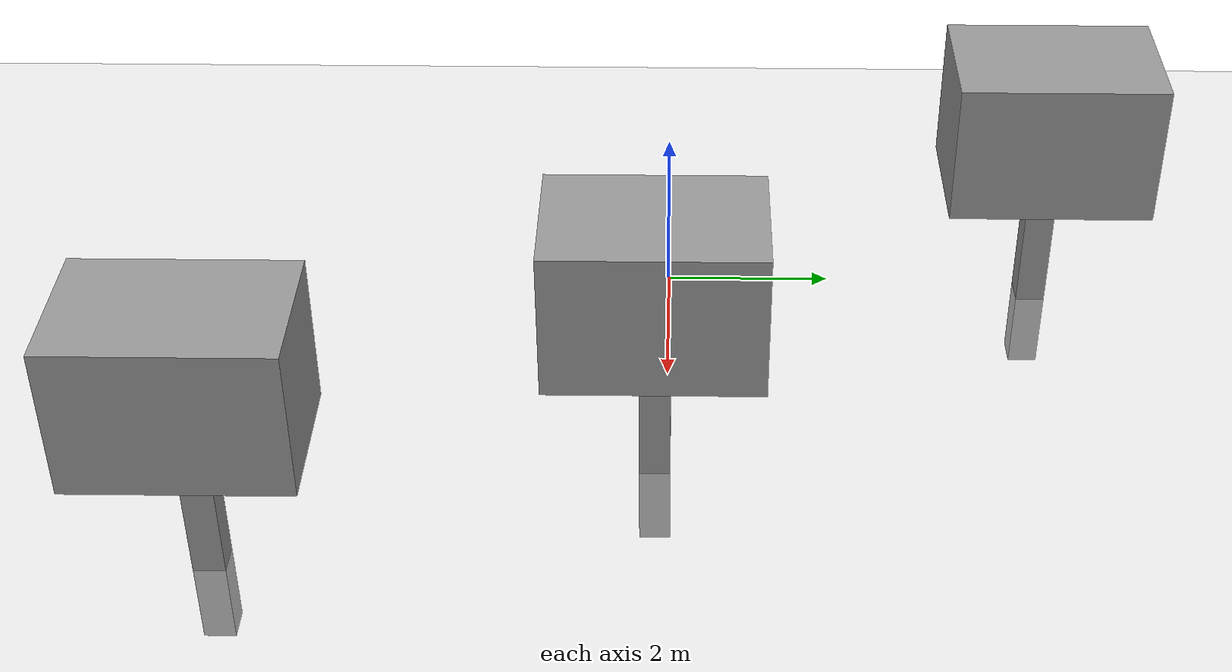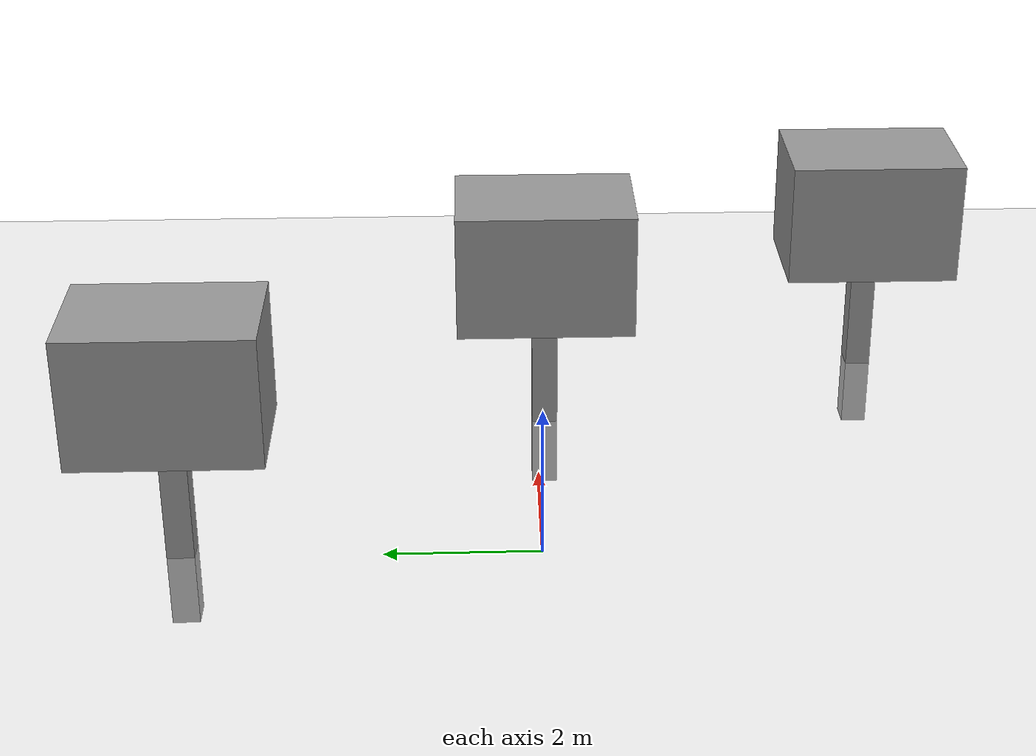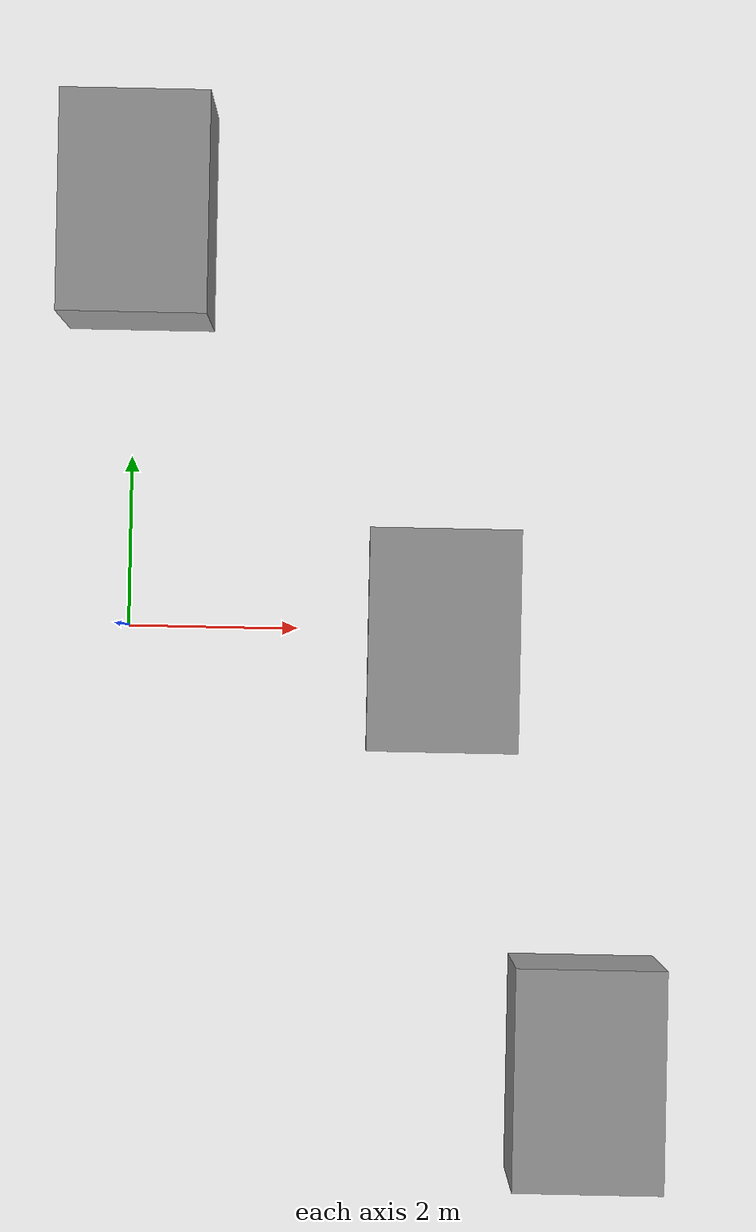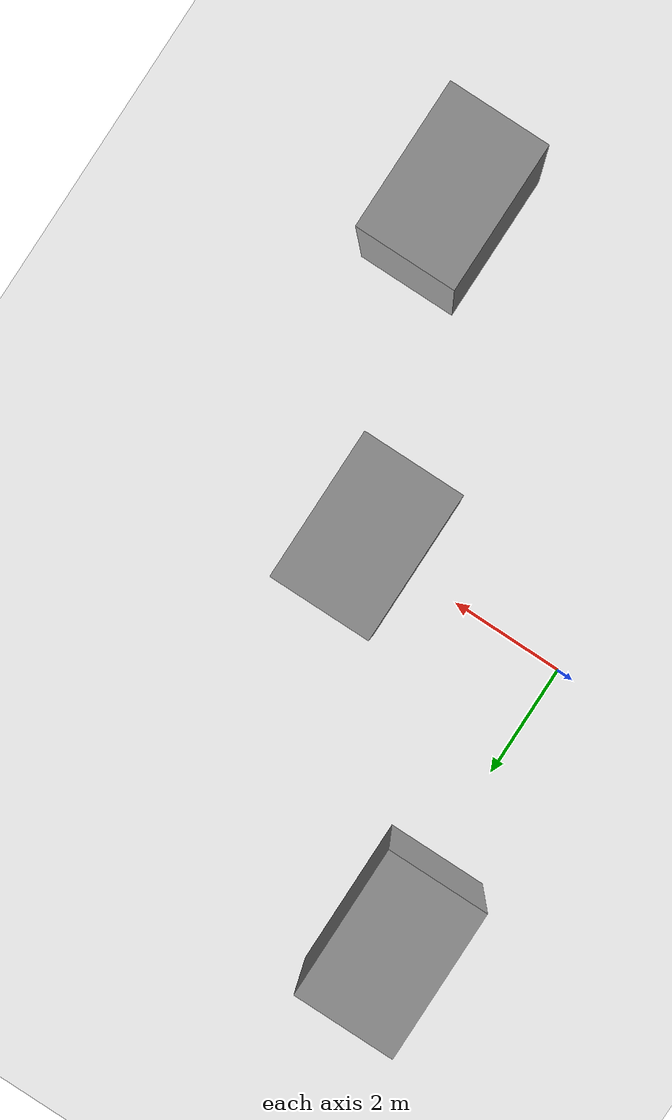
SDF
<sdf version="1.7">
 <world name="default">
  <light name="sun" type="directional">
   <pose>0 0 10 0 -0 0</pose>
   <diffuse>0.8 0.8 0.8 1</diffuse>
   <specular>0.2 0.2 0.2 1</specular>
   <attenuation>
    <range>1000</range>
    <constant>0.9</constant>
    <linear>0.01</linear>
    <quadratic>0.001</quadratic>
   </attenuation>
   <direction>-0.5 0.1 -0.9</direction>
   <spot><inner_angle>0</inner_angle><outer_angle>0</outer_angle><falloff>0</falloff></spot>
  </light>
  <model name="ground_plane">
   <static>1</static>
   <link name="link">
    <collision name="collision">
     <geometry><plane><normal>0 0 1</normal><size>100 100</size></plane></geometry>
     <surface>
      <contact><collide_bitmask>65535</collide_bitmask></contact>
      <friction><ode><mu>100</mu><mu2>50</mu2></ode></friction>
     </surface>
    </collision>
    <visual name="visual">
     <cast_shadows>0</cast_shadows>
     <geometry><plane><normal>0 0 1</normal><size>100 100</size></plane></geometry>
     <material>
      <script><uri>file://media/materials/scripts/gazebo.material</uri><name>Gazebo/Grey</name></script>
     </material>
    </visual>
   </link>
  </model>
  <gravity>0 0 -9.8</gravity>
  <magnetic_field>6e-06 2.3e-05 -4.2e-05</magnetic_field>
  <atmosphere type="adiabatic"/>
  <physics type="ode">
   <max_step_size>0.001</max_step_size>
   <real_time_factor>1</real_time_factor>
   <real_time_update_rate>1000</real_time_update_rate>
  </physics>
  <scene><ambient>0.4 0.4 0.4 1</ambient><background>0.7 0.7 0.7 1</background><shadows>1</shadows></scene>
  <spherical_coordinates>
   <surface_model>EARTH_WGS84</surface_model>
   <latitude_deg>0</latitude_deg>
   <longitude_deg>0</longitude_deg>
   <elevation>0</elevation>
   <heading_deg>0</heading_deg>
  </spherical_coordinates>
  <model name="unit_box">
   <link name="link">
    <inertial>
     <mass>0.369447</mass>
     <inertia>
      <ixx>0.271173</ixx>
      <ixy>0</ixy>
      <ixz>0</ixz>
      <iyy>0.271397</iyy>
      <iyz>0</iyz>
      <izz>0.00772365</izz>
     </inertia>
    </inertial>
    <pose>-0.004461 0.004406 -0 0 -0 0</pose>
    <visual name="visual">
     <geometry><box><size>0.35927 0.348994 2.94723</size></box></geometry>
     <material>
      <script><name>Gazebo/Grey</name><uri>file://media/materials/scripts/gazebo.material</uri></script>
      <shader type="pixel"/>
     </material>
    </visual>
    <collision name="collision">
     <geometry><box><size>0.35927 0.348994 2.94723</size></box></geometry>
     <surface>
      <friction>
       <ode><mu>1</mu><mu2>1</mu2><fdir1>0 0 0</fdir1><slip1>0</slip1><slip2>0</slip2></ode>
       <torsional>
        <coefficient>1</coefficient>
        <patch_radius>0</patch_radius>
        <surface_radius>0</surface_radius>
        <use_patch_radius>1</use_patch_radius>
        <ode><slip>0</slip></ode>
       </torsional>
      </friction>
      <bounce><restitution_coefficient>0</restitution_coefficient><threshold>1e+06</threshold></bounce>
      <contact>
       <collide_without_contact>0</collide_without_contact>
       <collide_without_contact_bitmask>1</collide_without_contact_bitmask>
       <collide_bitmask>1</collide_bitmask>
       <ode>
        <soft_cfm>0</soft_cfm>
        <soft_erp>0.2</soft_erp>
        <kp>1e+13</kp>
        <kd>1</kd>
        <max_vel>0.01</max_vel>
        <min_depth>0</min_depth>
       </ode>
       <bullet>
        <split_impulse>1</split_impulse>
        <split_impulse_penetration_threshold>-0.01</split_impulse_penetration_threshold>
        <soft_cfm>0</soft_cfm>
        <soft_erp>0.2</soft_erp>
        <kp>1e+13</kp>
        <kd>1</kd>
       </bullet>
      </contact>
     </surface>
    </collision>
   </link>
   <link name="link_0">
    <inertial>
     <mass>6.72494</mass>
     <inertia><ixx>4.88018</ixx><ixy>0</ixy><ixz>0</ixz><iyy>3.13848</iyy><iyz>0</iyz><izz>4.73661</izz></inertia>
    </inertial>
    <pose>0.001744 -0.001232 1.95604 -1e-05 0 0</pose>
    <visual name="visual">
     <geometry><box><size>1.63464 2.40415 1.71121</size></box></geometry>
     <material>
      <lighting>1</lighting>
      <script><uri>file://media/materials/scripts/gazebo.material</uri><name>Gazebo/Grey</name></script>
      <shader type="pixel"/>
     </material>
    </visual>
    <collision name="collision">
     <geometry><box><size>1.63464 2.40415 1.71121</size></box></geometry>
     <surface>
      <friction>
       <ode><mu>1</mu><mu2>1</mu2><fdir1>0 0 0</fdir1><slip1>0</slip1><slip2>0</slip2></ode>
       <torsional>
        <coefficient>1</coefficient>
        <patch_radius>0</patch_radius>
        <surface_radius>0</surface_radius>
        <use_patch_radius>1</use_patch_radius>
        <ode><slip>0</slip></ode>
       </torsional>
      </friction>
      <bounce><restitution_coefficient>0</restitution_coefficient><threshold>1e+06</threshold></bounce>
      <contact>
       <collide_without_contact>0</collide_without_contact>
       <collide_without_contact_bitmask>1</collide_without_contact_bitmask>
       <collide_bitmask>1</collide_bitmask>
       <ode>
        <soft_cfm>0</soft_cfm>
        <soft_erp>0.2</soft_erp>
        <kp>1e+13</kp>
        <kd>1</kd>
        <max_vel>0.01</max_vel>
        <min_depth>0</min_depth>
       </ode>
       <bullet>
        <split_impulse>1</split_impulse>
        <split_impulse_penetration_threshold>-0.01</split_impulse_penetration_threshold>
        <soft_cfm>0</soft_cfm>
        <soft_erp>0.2</soft_erp>
        <kp>1e+13</kp>
        <kd>1</kd>
       </bullet>
      </contact>
     </surface>
    </collision>
   </link>
   <static>1</static>
   <pose>3.64884 -0.134159 0.500005 1e-05 -0 0</pose>
  </model>
  <model name="unit_box_clone">
   <link name="link">
    <inertial>
     <mass>0.369447</mass>
     <inertia>
      <ixx>0.271173</ixx>
      <ixy>0</ixy>
      <ixz>0</ixz>
      <iyy>0.271397</iyy>
      <iyz>0</iyz>
      <izz>0.00772365</izz>
     </inertia>
    </inertial>
    <pose>-0.004461 0.004406 -0 0 -0 0</pose>
    <visual name="visual">
     <geometry><box><size>0.35927 0.348994 2.94723</size></box></geometry>
     <material>
      <script><name>Gazebo/Grey</name><uri>file://media/materials/scripts/gazebo.material</uri></script>
      <shader type="pixel"/>
     </material>
    </visual>
    <collision name="collision">
     <geometry><box><size>0.35927 0.348994 2.94723</size></box></geometry>
     <surface>
      <friction>
       <ode><mu>1</mu><mu2>1</mu2><fdir1>0 0 0</fdir1><slip1>0</slip1><slip2>0</slip2></ode>
       <torsional>
        <coefficient>1</coefficient>
        <patch_radius>0</patch_radius>
        <surface_radius>0</surface_radius>
        <use_patch_radius>1</use_patch_radius>
        <ode><slip>0</slip></ode>
       </torsional>
      </friction>
      <bounce><restitution_coefficient>0</restitution_coefficient><threshold>1e+06</threshold></bounce>
      <contact>
       <collide_without_contact>0</collide_without_contact>
       <collide_without_contact_bitmask>1</collide_without_contact_bitmask>
       <collide_bitmask>1</collide_bitmask>
       <ode>
        <soft_cfm>0</soft_cfm>
        <soft_erp>0.2</soft_erp>
        <kp>1e+13</kp>
        <kd>1</kd>
        <max_vel>0.01</max_vel>
        <min_depth>0</min_depth>
       </ode>
       <bullet>
        <split_impulse>1</split_impulse>
        <split_impulse_penetration_threshold>-0.01</split_impulse_penetration_threshold>
        <soft_cfm>0</soft_cfm>
        <soft_erp>0.2</soft_erp>
        <kp>1e+13</kp>
        <kd>1</kd>
       </bullet>
      </contact>
     </surface>
    </collision>
   </link>
   <link name="link_0">
    <inertial>
     <mass>6.72494</mass>
     <inertia><ixx>4.88018</ixx><ixy>0</ixy><ixz>0</ixz><iyy>3.13848</iyy><iyz>0</iyz><izz>4.73661</izz></inertia>
    </inertial>
    <pose>0.001744 -0.001232 1.95604 -1e-05 0 0</pose>
    <visual name="visual">
     <geometry><box><size>1.63464 2.40415 1.71121</size></box></geometry>
     <material>
      <lighting>1</lighting>
      <script><uri>file://media/materials/scripts/gazebo.material</uri><name>Gazebo/Grey</name></script>
      <shader type="pixel"/>
     </material>
    </visual>
    <collision name="collision">
     <geometry><box><size>1.63464 2.40415 1.71121</size></box></geometry>
     <surface>
      <friction>
       <ode><mu>1</mu><mu2>1</mu2><fdir1>0 0 0</fdir1><slip1>0</slip1><slip2>0</slip2></ode>
       <torsional>
        <coefficient>1</coefficient>
        <patch_radius>0</patch_radius>
        <surface_radius>0</surface_radius>
        <use_patch_radius>1</use_patch_radius>
        <ode><slip>0</slip></ode>
       </torsional>
      </friction>
      <bounce><restitution_coefficient>0</restitution_coefficient><threshold>1e+06</threshold></bounce>
      <contact>
       <collide_without_contact>0</collide_without_contact>
       <collide_without_contact_bitmask>1</collide_without_contact_bitmask>
       <collide_bitmask>1</collide_bitmask>
       <ode>
        <soft_cfm>0</soft_cfm>
        <soft_erp>0.2</soft_erp>
        <kp>1e+13</kp>
        <kd>1</kd>
        <max_vel>0.01</max_vel>
        <min_depth>0</min_depth>
       </ode>
       <bullet>
        <split_impulse>1</split_impulse>
        <split_impulse_penetration_threshold>-0.01</split_impulse_penetration_threshold>
        <soft_cfm>0</soft_cfm>
        <soft_erp>0.2</soft_erp>
        <kp>1e+13</kp>
        <kd>1</kd>
       </bullet>
      </contact>
     </surface>
    </collision>
   </link>
   <static>1</static>
   <pose>5.3045 -4.83538 0.500005 1e-05 -0 0</pose>
  </model>
  <model name="unit_box_clone_0">
   <link name="link">
    <inertial>
     <mass>0.369447</mass>
     <inertia>
      <ixx>0.271173</ixx>
      <ixy>0</ixy>
      <ixz>0</ixz>
      <iyy>0.271397</iyy>
      <iyz>0</iyz>
      <izz>0.00772365</izz>
     </inertia>
    </inertial>
    <pose>-0.004461 0.004406 -0 0 -0 0</pose>
    <visual name="visual">
     <geometry><box><size>0.35927 0.348994 2.94723</size></box></geometry>
     <material>
      <script><name>Gazebo/Grey</name><uri>file://media/materials/scripts/gazebo.material</uri></script>
      <shader type="pixel"/>
     </material>
    </visual>
    <collision name="collision">
     <geometry><box><size>0.35927 0.348994 2.94723</size></box></geometry>
     <surface>
      <friction>
       <ode><mu>1</mu><mu2>1</mu2><fdir1>0 0 0</fdir1><slip1>0</slip1><slip2>0</slip2></ode>
       <torsional>
        <coefficient>1</coefficient>
        <patch_radius>0</patch_radius>
        <surface_radius>0</surface_radius>
        <use_patch_radius>1</use_patch_radius>
        <ode><slip>0</slip></ode>
       </torsional>
      </friction>
      <bounce><restitution_coefficient>0</restitution_coefficient><threshold>1e+06</threshold></bounce>
      <contact>
       <collide_without_contact>0</collide_without_contact>
       <collide_without_contact_bitmask>1</collide_without_contact_bitmask>
       <collide_bitmask>1</collide_bitmask>
       <ode>
        <soft_cfm>0</soft_cfm>
        <soft_erp>0.2</soft_erp>
        <kp>1e+13</kp>
        <kd>1</kd>
        <max_vel>0.01</max_vel>
        <min_depth>0</min_depth>
       </ode>
       <bullet>
        <split_impulse>1</split_impulse>
        <split_impulse_penetration_threshold>-0.01</split_impulse_penetration_threshold>
        <soft_cfm>0</soft_cfm>
        <soft_erp>0.2</soft_erp>
        <kp>1e+13</kp>
        <kd>1</kd>
       </bullet>
      </contact>
     </surface>
    </collision>
   </link>
   <link name="link_0">
    <inertial>
     <mass>6.72494</mass>
     <inertia><ixx>4.88018</ixx><ixy>0</ixy><ixz>0</ixz><iyy>3.13848</iyy><iyz>0</iyz><izz>4.73661</izz></inertia>
    </inertial>
    <pose>0.001744 -0.001232 1.95604 -1e-05 0 0</pose>
    <visual name="visual">
     <geometry><box><size>1.63464 2.40415 1.71121</size></box></geometry>
     <material>
      <lighting>1</lighting>
      <script><uri>file://media/materials/scripts/gazebo.material</uri><name>Gazebo/Grey</name></script>
      <shader type="pixel"/>
     </material>
    </visual>
    <collision name="collision">
     <geometry><box><size>1.63464 2.40415 1.71121</size></box></geometry>
     <surface>
      <friction>
       <ode><mu>1</mu><mu2>1</mu2><fdir1>0 0 0</fdir1><slip1>0</slip1><slip2>0</slip2></ode>
       <torsional>
        <coefficient>1</coefficient>
        <patch_radius>0</patch_radius>
        <surface_radius>0</surface_radius>
        <use_patch_radius>1</use_patch_radius>
        <ode><slip>0</slip></ode>
       </torsional>
      </friction>
      <bounce><restitution_coefficient>0</restitution_coefficient><threshold>1e+06</threshold></bounce>
      <contact>
       <collide_without_contact>0</collide_without_contact>
       <collide_without_contact_bitmask>1</collide_without_contact_bitmask>
       <collide_bitmask>1</collide_bitmask>
       <ode>
        <soft_cfm>0</soft_cfm>
        <soft_erp>0.2</soft_erp>
        <kp>1e+13</kp>
        <kd>1</kd>
        <max_vel>0.01</max_vel>
        <min_depth>0</min_depth>
       </ode>
       <bullet>
        <split_impulse>1</split_impulse>
        <split_impulse_penetration_threshold>-0.01</split_impulse_penetration_threshold>
        <soft_cfm>0</soft_cfm>
        <soft_erp>0.2</soft_erp>
        <kp>1e+13</kp>
        <kd>1</kd>
       </bullet>
      </contact>
     </surface>
    </collision>
   </link>
   <static>1</static>
   <pose>0.207883 4.52823 0.500005 1e-05 -0 0</pose>
  </model>
 </world>
</sdf>
